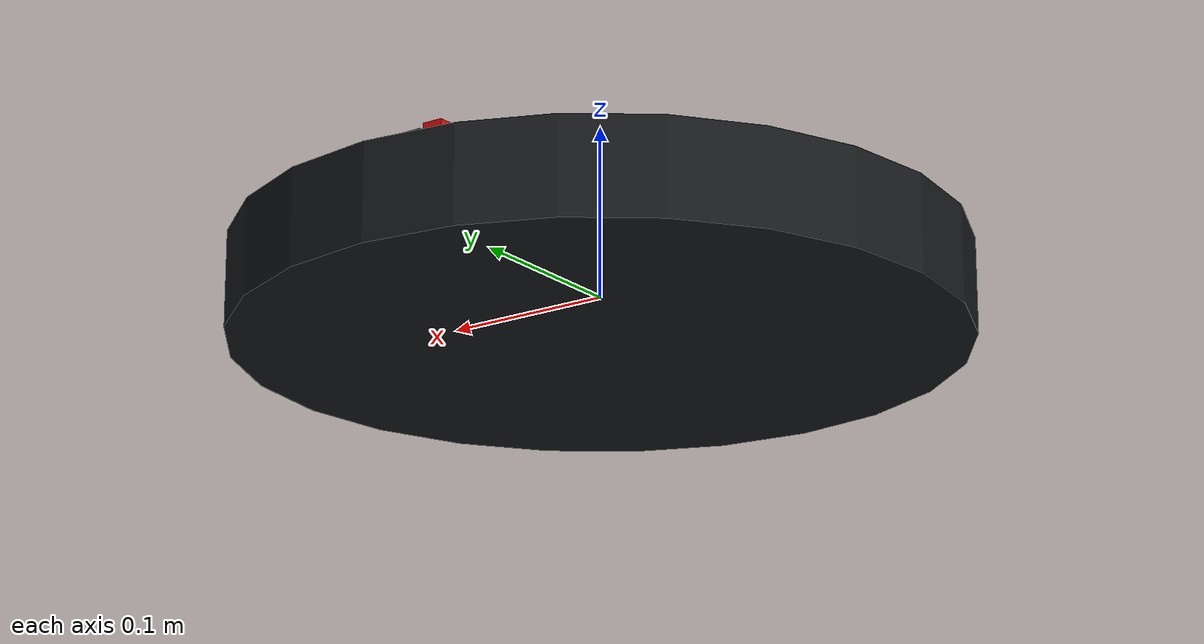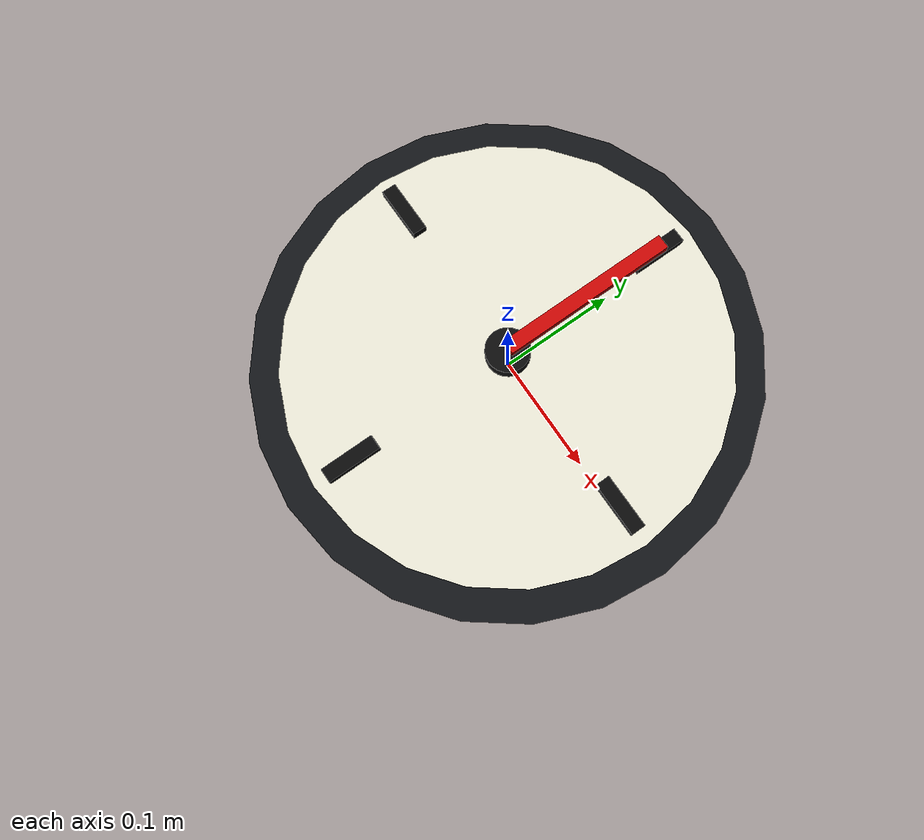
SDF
<?xml version="1.0"?>
<sdf version="1.10">
  <model name="synthetic_meter">
    <static>false</static>
    <allow_auto_disable>false</allow_auto_disable>
    <link name="case_link">
      <gravity>false</gravity><kinematic>true</kinematic>
      <inertial><mass>1.0</mass><inertia><ixx>0.01</ixx><iyy>0.01</iyy><izz>0.01</izz><ixy>0</ixy><ixz>0</ixz><iyz>0</iyz></inertia></inertial>
      <visual name="case"><geometry><cylinder><radius>0.205</radius><length>0.055</length></cylinder></geometry><material><diffuse>0.08 0.09 0.10 1</diffuse><specular>0.25 0.25 0.25 1</specular></material></visual>
      <visual name="face"><pose>0 0 0.031 0 0 0</pose><geometry><cylinder><radius>0.18</radius><length>0.008</length></cylinder></geometry><material><diffuse>0.94 0.93 0.86 1</diffuse><ambient>0.75 0.75 0.70 1</ambient></material></visual>
      <visual name="hub"><pose>0 0 0.041 0 0 0</pose><geometry><cylinder><radius>0.018</radius><length>0.016</length></cylinder></geometry><material><diffuse>0.05 0.05 0.05 1</diffuse></material></visual>
      <visual name="tick_00"><pose>0 0.145 0.041 0 0 0</pose><geometry><box><size>0.012 0.045 0.008</size></box></geometry><material><diffuse>0.04 0.04 0.04 1</diffuse></material></visual>
      <visual name="tick_03"><pose>0.145 0 0.041 0 0 1.57079632679</pose><geometry><box><size>0.012 0.045 0.008</size></box></geometry><material><diffuse>0.04 0.04 0.04 1</diffuse></material></visual>
      <visual name="tick_06"><pose>0 -0.145 0.041 0 0 0</pose><geometry><box><size>0.012 0.045 0.008</size></box></geometry><material><diffuse>0.04 0.04 0.04 1</diffuse></material></visual>
      <visual name="tick_09"><pose>-0.145 0 0.041 0 0 1.57079632679</pose><geometry><box><size>0.012 0.045 0.008</size></box></geometry><material><diffuse>0.04 0.04 0.04 1</diffuse></material></visual>
    </link>
    <link name="needle_link">
      <gravity>false</gravity>
      <inertial><mass>0.01</mass><inertia><ixx>0.0001</ixx><iyy>0.0001</iyy><izz>0.0001</izz><ixy>0</ixy><ixz>0</ixz><iyz>0</iyz></inertia></inertial>
      <visual name="needle"><pose>0 0.075 0.052 0 0 0</pose><geometry><box><size>0.012 0.15 0.008</size></box></geometry><material><diffuse>0.82 0.03 0.02 1</diffuse><emissive>0.12 0 0 1</emissive></material></visual>
    </link>
    <joint name="needle_joint" type="revolute">
      <parent>case_link</parent><child>needle_link</child>
      <axis><xyz>0 0 1</xyz><limit><lower>-2.5</lower><upper>2.5</upper><effort>10</effort><velocity>20</velocity></limit><dynamics><damping>0.2</damping></dynamics></axis>
    </joint>
    <plugin filename="gz-sim-joint-position-controller-system" name="gz::sim::systems::JointPositionController">
      <joint_name>needle_joint</joint_name><p_gain>8</p_gain><i_gain>0.1</i_gain><d_gain>0.2</d_gain><cmd_max>20</cmd_max><cmd_min>-20</cmd_min>
    </plugin>
    <plugin filename="gz-sim-joint-state-publisher-system" name="gz::sim::systems::JointStatePublisher">
      <topic>meter_dataset/joint_states</topic>
    </plugin>
  </model>
</sdf>
